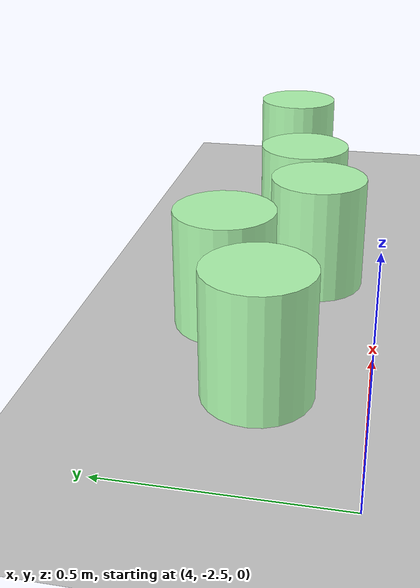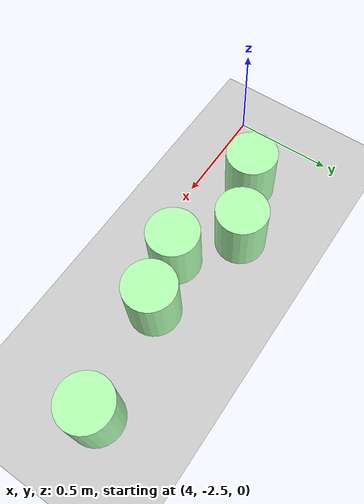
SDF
<sdf version="1.7">
 <world name="default">
  <model name="ground_plane">
   <static>1</static>
   <link name="link">
    <collision name="collision">
     <geometry><plane><normal>0 0 1</normal><size>100 100</size></plane></geometry>
     <surface><friction><ode><mu>100</mu><mu2>50</mu2></ode></friction></surface>
    </collision>
    <visual name="visual">
     <cast_shadows>0</cast_shadows>
     <geometry><plane><normal>0 0 1</normal><size>100 100</size></plane></geometry>
     <material>
      <script><uri>file://media/materials/scripts/gazebo.material</uri><name>Gazebo/Grey</name></script>
     </material>
    </visual>
   </link>
  </model>
  <model name="mhz_y_25_30_clone_29_clone_clone_clone_1_clone_2_clone_13">
   <link name="link">
    <inertial>
     <mass>1</mass>
     <inertia><ixx>0.145833</ixx><ixy>0</ixy><ixz>0</ixz><iyy>0.145833</iyy><iyz>0</iyz><izz>0.125</izz></inertia>
    </inertial>
    <visual name="visual">
     <geometry><cylinder><radius>0.125</radius><length>0.3</length></cylinder></geometry>
     <material>
      <script><name>Gazebo/Grey</name><uri>file://media/materials/scripts/gazebo.material</uri></script>
      <shader type="pixel"><normal_map>__default__</normal_map></shader>
      <ambient>0 1 0 0</ambient>
      <diffuse>0.7 1 0.7 1</diffuse>
      <specular>0.01 0.01 0.01 1</specular>
      <emissive>0 0 0 1</emissive>
     </material>
    </visual>
    <collision name="collision">
     <geometry><cylinder><radius>0.125</radius><length>0.3</length></cylinder></geometry>
     <surface>
      <friction>
       <ode><mu>1</mu><mu2>1</mu2><fdir1>0 0 0</fdir1><slip1>0</slip1><slip2>0</slip2></ode>
       <torsional>
        <coefficient>1</coefficient>
        <patch_radius>0</patch_radius>
        <surface_radius>0</surface_radius>
        <use_patch_radius>1</use_patch_radius>
        <ode><slip>0</slip></ode>
       </torsional>
      </friction>
      <bounce><restitution_coefficient>0</restitution_coefficient><threshold>1e+06</threshold></bounce>
      <contact>
       <collide_without_contact>0</collide_without_contact>
       <collide_without_contact_bitmask>1</collide_without_contact_bitmask>
       <collide_bitmask>1</collide_bitmask>
       <ode>
        <soft_cfm>0</soft_cfm>
        <soft_erp>0.2</soft_erp>
        <kp>1e+13</kp>
        <kd>1</kd>
        <max_vel>0.01</max_vel>
        <min_depth>0</min_depth>
       </ode>
       <bullet>
        <split_impulse>1</split_impulse>
        <split_impulse_penetration_threshold>-0.01</split_impulse_penetration_threshold>
        <soft_cfm>0</soft_cfm>
        <soft_erp>0.2</soft_erp>
        <kp>1e+13</kp>
        <kd>1</kd>
       </bullet>
      </contact>
     </surface>
    </collision>
   </link>
   <static>1</static>
   <pose>4.32644 -2.26147 0.14679 0 -0 0</pose>
  </model>
  <model name="mhz_y_25_30_clone_29_clone_clone_clone_1_clone_2_clone_8_clone">
   <link name="link">
    <inertial>
     <mass>1</mass>
     <inertia><ixx>0.145833</ixx><ixy>0</ixy><ixz>0</ixz><iyy>0.145833</iyy><iyz>0</iyz><izz>0.125</izz></inertia>
    </inertial>
    <visual name="visual">
     <geometry><cylinder><radius>0.125</radius><length>0.3</length></cylinder></geometry>
     <material>
      <script><name>Gazebo/Grey</name><uri>file://media/materials/scripts/gazebo.material</uri></script>
      <shader type="pixel"><normal_map>__default__</normal_map></shader>
      <ambient>0 1 0 0</ambient>
      <diffuse>0.7 1 0.7 1</diffuse>
      <specular>0.01 0.01 0.01 1</specular>
      <emissive>0 0 0 1</emissive>
     </material>
    </visual>
    <collision name="collision">
     <geometry><cylinder><radius>0.125</radius><length>0.3</length></cylinder></geometry>
     <surface>
      <friction>
       <ode><mu>1</mu><mu2>1</mu2><fdir1>0 0 0</fdir1><slip1>0</slip1><slip2>0</slip2></ode>
       <torsional>
        <coefficient>1</coefficient>
        <patch_radius>0</patch_radius>
        <surface_radius>0</surface_radius>
        <use_patch_radius>1</use_patch_radius>
        <ode><slip>0</slip></ode>
       </torsional>
      </friction>
      <bounce><restitution_coefficient>0</restitution_coefficient><threshold>1e+06</threshold></bounce>
      <contact>
       <collide_without_contact>0</collide_without_contact>
       <collide_without_contact_bitmask>1</collide_without_contact_bitmask>
       <collide_bitmask>1</collide_bitmask>
       <ode>
        <soft_cfm>0</soft_cfm>
        <soft_erp>0.2</soft_erp>
        <kp>1e+13</kp>
        <kd>1</kd>
        <max_vel>0.01</max_vel>
        <min_depth>0</min_depth>
       </ode>
       <bullet>
        <split_impulse>1</split_impulse>
        <split_impulse_penetration_threshold>-0.01</split_impulse_penetration_threshold>
        <soft_cfm>0</soft_cfm>
        <soft_erp>0.2</soft_erp>
        <kp>1e+13</kp>
        <kd>1</kd>
       </bullet>
      </contact>
     </surface>
    </collision>
   </link>
   <static>1</static>
   <pose>4.61876 -2.13216 0.14679 0 -0 0</pose>
  </model>
  <model name="mhz_y_25_30_clone_29_clone_clone_clone_1_clone_2_clone_8_clone_1">
   <link name="link">
    <inertial>
     <mass>1</mass>
     <inertia><ixx>0.145833</ixx><ixy>0</ixy><ixz>0</ixz><iyy>0.145833</iyy><iyz>0</iyz><izz>0.125</izz></inertia>
    </inertial>
    <visual name="visual">
     <geometry><cylinder><radius>0.125</radius><length>0.3</length></cylinder></geometry>
     <material>
      <script><name>Gazebo/Grey</name><uri>file://media/materials/scripts/gazebo.material</uri></script>
      <shader type="pixel"><normal_map>__default__</normal_map></shader>
      <ambient>0 1 0 0</ambient>
      <diffuse>0.7 1 0.7 1</diffuse>
      <specular>0.01 0.01 0.01 1</specular>
      <emissive>0 0 0 1</emissive>
     </material>
    </visual>
    <collision name="collision">
     <geometry><cylinder><radius>0.125</radius><length>0.3</length></cylinder></geometry>
     <surface>
      <friction>
       <ode><mu>1</mu><mu2>1</mu2><fdir1>0 0 0</fdir1><slip1>0</slip1><slip2>0</slip2></ode>
       <torsional>
        <coefficient>1</coefficient>
        <patch_radius>0</patch_radius>
        <surface_radius>0</surface_radius>
        <use_patch_radius>1</use_patch_radius>
        <ode><slip>0</slip></ode>
       </torsional>
      </friction>
      <bounce><restitution_coefficient>0</restitution_coefficient><threshold>1e+06</threshold></bounce>
      <contact>
       <collide_without_contact>0</collide_without_contact>
       <collide_without_contact_bitmask>1</collide_without_contact_bitmask>
       <collide_bitmask>1</collide_bitmask>
       <ode>
        <soft_cfm>0</soft_cfm>
        <soft_erp>0.2</soft_erp>
        <kp>1e+13</kp>
        <kd>1</kd>
        <max_vel>0.01</max_vel>
        <min_depth>0</min_depth>
       </ode>
       <bullet>
        <split_impulse>1</split_impulse>
        <split_impulse_penetration_threshold>-0.01</split_impulse_penetration_threshold>
        <soft_cfm>0</soft_cfm>
        <soft_erp>0.2</soft_erp>
        <kp>1e+13</kp>
        <kd>1</kd>
       </bullet>
      </contact>
     </surface>
    </collision>
   </link>
   <static>1</static>
   <pose>4.88035 -2.33064 0.14679 0 -0 0</pose>
  </model>
  <model name="mhz_y_25_30_clone_29_clone_clone_clone_1_clone_2_clone_8_clone_clone">
   <link name="link">
    <inertial>
     <mass>1</mass>
     <inertia><ixx>0.145833</ixx><ixy>0</ixy><ixz>0</ixz><iyy>0.145833</iyy><iyz>0</iyz><izz>0.125</izz></inertia>
    </inertial>
    <visual name="visual">
     <geometry><cylinder><radius>0.125</radius><length>0.3</length></cylinder></geometry>
     <material>
      <script><name>Gazebo/Grey</name><uri>file://media/materials/scripts/gazebo.material</uri></script>
      <shader type="pixel"><normal_map>__default__</normal_map></shader>
      <ambient>0 1 0 0</ambient>
      <diffuse>0.7 1 0.7 1</diffuse>
      <specular>0.01 0.01 0.01 1</specular>
      <emissive>0 0 0 1</emissive>
     </material>
    </visual>
    <collision name="collision">
     <geometry><cylinder><radius>0.125</radius><length>0.3</length></cylinder></geometry>
     <surface>
      <friction>
       <ode><mu>1</mu><mu2>1</mu2><fdir1>0 0 0</fdir1><slip1>0</slip1><slip2>0</slip2></ode>
       <torsional>
        <coefficient>1</coefficient>
        <patch_radius>0</patch_radius>
        <surface_radius>0</surface_radius>
        <use_patch_radius>1</use_patch_radius>
        <ode><slip>0</slip></ode>
       </torsional>
      </friction>
      <bounce><restitution_coefficient>0</restitution_coefficient><threshold>1e+06</threshold></bounce>
      <contact>
       <collide_without_contact>0</collide_without_contact>
       <collide_without_contact_bitmask>1</collide_without_contact_bitmask>
       <collide_bitmask>1</collide_bitmask>
       <ode>
        <soft_cfm>0</soft_cfm>
        <soft_erp>0.2</soft_erp>
        <kp>1e+13</kp>
        <kd>1</kd>
        <max_vel>0.01</max_vel>
        <min_depth>0</min_depth>
       </ode>
       <bullet>
        <split_impulse>1</split_impulse>
        <split_impulse_penetration_threshold>-0.01</split_impulse_penetration_threshold>
        <soft_cfm>0</soft_cfm>
        <soft_erp>0.2</soft_erp>
        <kp>1e+13</kp>
        <kd>1</kd>
       </bullet>
      </contact>
     </surface>
    </collision>
   </link>
   <static>1</static>
   <pose>5.14362 -2.26403 0.14679 0 -0 0</pose>
  </model>
  <model name="mhz_y_25_30_clone_29_clone_clone_clone_1_clone_2_clone_8_clone_clone_clone_0_clone_1_clone">
   <link name="link">
    <inertial>
     <mass>1</mass>
     <inertia><ixx>0.145833</ixx><ixy>0</ixy><ixz>0</ixz><iyy>0.145833</iyy><iyz>0</iyz><izz>0.125</izz></inertia>
    </inertial>
    <visual name="visual">
     <geometry><cylinder><radius>0.125</radius><length>0.3</length></cylinder></geometry>
     <material>
      <script><name>Gazebo/Grey</name><uri>file://media/materials/scripts/gazebo.material</uri></script>
      <shader type="pixel"><normal_map>__default__</normal_map></shader>
      <ambient>0 1 0 0</ambient>
      <diffuse>0.7 1 0.7 1</diffuse>
      <specular>0.01 0.01 0.01 1</specular>
      <emissive>0 0 0 1</emissive>
     </material>
    </visual>
    <collision name="collision">
     <geometry><cylinder><radius>0.125</radius><length>0.3</length></cylinder></geometry>
     <surface>
      <friction>
       <ode><mu>1</mu><mu2>1</mu2><fdir1>0 0 0</fdir1><slip1>0</slip1><slip2>0</slip2></ode>
       <torsional>
        <coefficient>1</coefficient>
        <patch_radius>0</patch_radius>
        <surface_radius>0</surface_radius>
        <use_patch_radius>1</use_patch_radius>
        <ode><slip>0</slip></ode>
       </torsional>
      </friction>
      <bounce><restitution_coefficient>0</restitution_coefficient><threshold>1e+06</threshold></bounce>
      <contact>
       <collide_without_contact>0</collide_without_contact>
       <collide_without_contact_bitmask>1</collide_without_contact_bitmask>
       <collide_bitmask>1</collide_bitmask>
       <ode>
        <soft_cfm>0</soft_cfm>
        <soft_erp>0.2</soft_erp>
        <kp>1e+13</kp>
        <kd>1</kd>
        <max_vel>0.01</max_vel>
        <min_depth>0</min_depth>
       </ode>
       <bullet>
        <split_impulse>1</split_impulse>
        <split_impulse_penetration_threshold>-0.01</split_impulse_penetration_threshold>
        <soft_cfm>0</soft_cfm>
        <soft_erp>0.2</soft_erp>
        <kp>1e+13</kp>
        <kd>1</kd>
       </bullet>
      </contact>
     </surface>
    </collision>
   </link>
   <static>1</static>
   <pose>5.66981 -2.18163 0.14679 0 -0 0</pose>
  </model>
 </world>
</sdf>
